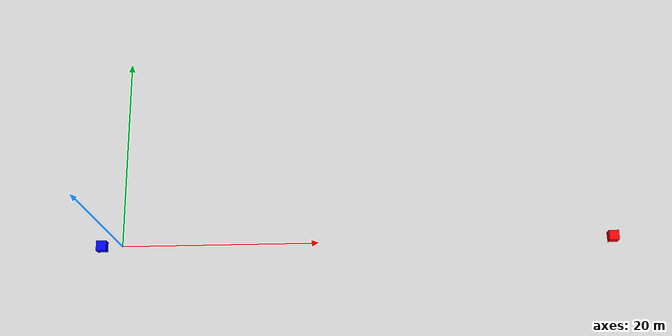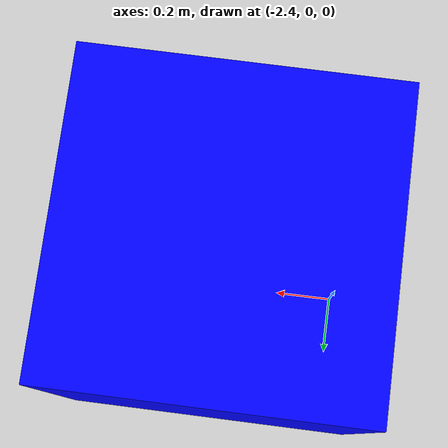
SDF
<?xml version="1.0" ?>
<sdf version="1.6">
  <world name="rf_comms">
    <plugin
      filename="gz-sim-apply-link-wrench-system"
      name="gz::sim::systems::ApplyLinkWrench">
    </plugin>

    <physics name="1ms" type="ignored">
      <max_step_size>0.001</max_step_size>
      <real_time_factor>1.0</real_time_factor>
    </physics>
    <plugin
      filename="gz-sim-physics-system"
      name="gz::sim::systems::Physics">
    </plugin>
    <plugin
      filename="gz-sim-user-commands-system"
      name="gz::sim::systems::UserCommands">
    </plugin>
    <plugin
      filename="gz-sim-scene-broadcaster-system"
      name="gz::sim::systems::SceneBroadcaster">
    </plugin>
    <plugin
      filename="gz-sim-rf-comms-system"
      name="gz::sim::systems::RFComms">
      <range_config>
        <max_range>500000.0</max_range>
        <fading_exponent>2.6</fading_exponent>
        <l0>40</l0>
        <sigma>10.0</sigma>
      </range_config>
      <radio_config>
        <capacity>1000000</capacity>
        <tx_power>20</tx_power>
        <noise_floor>-90</noise_floor>
        <modulation>QPSK</modulation>
      </radio_config>
    </plugin>

    <light type="directional" name="sun">
      <cast_shadows>true</cast_shadows>
      <pose>0 0 10 0 0 0</pose>
      <diffuse>1 1 1 1</diffuse>
      <specular>0.5 0.5 0.5 1</specular>
      <attenuation>
        <range>1000</range>
        <constant>0.9</constant>
        <linear>0.01</linear>
        <quadratic>0.001</quadratic>
      </attenuation>
      <direction>-0.5 0.1 -0.9</direction>
    </light>

    <model name="ground_plane">
      <static>true</static>
      <link name="link">
        <collision name="collision">
          <geometry>
            <plane>
              <normal>0 0 1</normal>
              <size>100 100</size>
            </plane>
          </geometry>
        </collision>
        <visual name="visual">
          <geometry>
            <plane>
              <normal>0 0 1</normal>
              <size>100 100</size>
            </plane>
          </geometry>
          <material>
            <ambient>0.8 0.8 0.8 1</ambient>
            <diffuse>0.8 0.8 0.8 1</diffuse>
            <specular>0.8 0.8 0.8 1</specular>
          </material>
        </visual>
      </link>
    </model>

    <model name="box1">
      <static>true</static>
      <pose>50 0 0.5 0 0 0</pose>
      <link name="box_link">
        <inertial>
          <inertia>
            <ixx>0.16666</ixx>
            <ixy>0</ixy>
            <ixz>0</ixz>
            <iyy>0.16666</iyy>
            <iyz>0</iyz>
            <izz>0.16666</izz>
          </inertia>
          <mass>1.0</mass>
        </inertial>
        <collision name="box_collision">
          <geometry>
            <box>
              <size>1 1 1</size>
            </box>
          </geometry>
        </collision>

        <visual name="box_visual">
          <geometry>
            <box>
              <size>1 1 1</size>
            </box>
          </geometry>
          <material>
            <ambient>1 0 0 1</ambient>
            <diffuse>1 0 0 1</diffuse>
            <specular>1 0 0 1</specular>
          </material>
        </visual>
      </link>

      <plugin
        filename="gz-sim-comms-endpoint-system"
        name="gz::sim::systems::CommsEndpoint">
        <address>addr1</address>
        <topic>addr1/rx</topic>
      </plugin>
    </model>

    <model name="box2">
      <pose>-2 0 0.5 0 0 0</pose>
      <link name="box_link">
        <inertial>
          <inertia>
            <ixx>0.16666</ixx>
            <ixy>0</ixy>
            <ixz>0</ixz>
            <iyy>0.16666</iyy>
            <iyz>0</iyz>
            <izz>0.16666</izz>
          </inertia>
          <mass>1.0</mass>
        </inertial>
        <collision name="box_collision">
          <geometry>
            <box>
              <size>1 1 1</size>
            </box>
          </geometry>
        </collision>

        <visual name="box_visual">
          <geometry>
            <box>
              <size>1 1 1</size>
            </box>
          </geometry>
          <material>
            <ambient>0 0 1 1</ambient>
            <diffuse>0 0 1 1</diffuse>
            <specular>0 0 1 1</specular>
          </material>
        </visual>
      </link>

      <plugin
        filename="gz-sim-comms-endpoint-system"
        name="gz::sim::systems::CommsEndpoint">
        <address>addr2</address>
        <topic>addr2/rx</topic>
        <broker>
          <bind_service>/broker/bind</bind_service>
          <unbind_service>/broker/unbind</unbind_service>
        </broker>
      </plugin>

    </model>

  </world>
</sdf>
